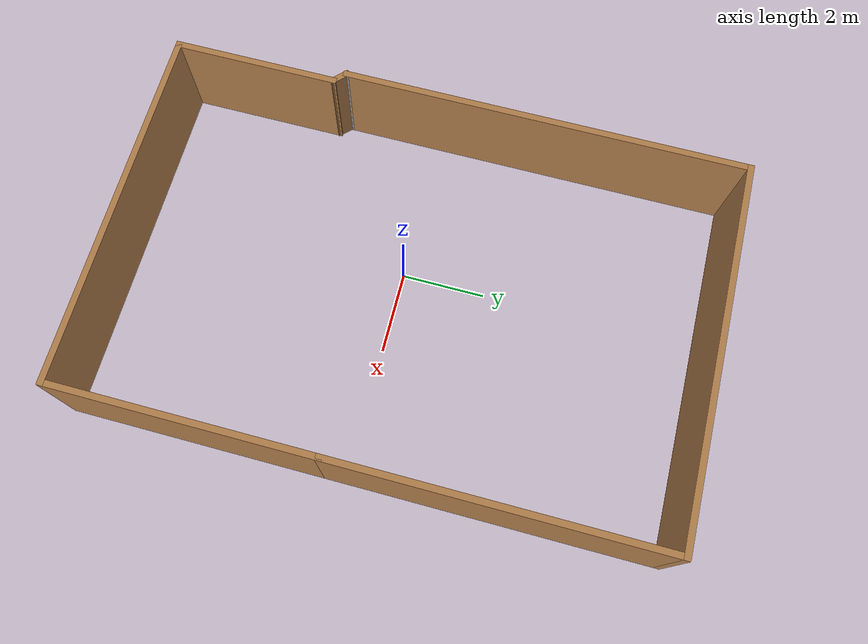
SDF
<?xml version='1.0'?>
<sdf version='1.7'>
  <model name='test2.world'>
    <pose>0.729467 0.36 0 0 -0 0</pose>
    <link name='Wall_0'>
      <collision name='Wall_0_Collision'>
        <geometry>
          <box>
            <size>4 0.15 2.5</size>
          </box>
        </geometry>
        <pose>0 0 1.25 0 -0 0</pose>
      </collision>
      <visual name='Wall_0_Visual'>
        <pose>0 0 1.25 0 -0 0</pose>
        <geometry>
          <box>
            <size>4 0.15 2.5</size>
          </box>
        </geometry>
        <material>
          <script>
            <uri>file://media/materials/scripts/gazebo.material</uri>
            <name>Gazebo/Wood</name>
          </script>
          <ambient>1 1 1 1</ambient>
        </material>
        <meta>
          <layer>0</layer>
        </meta>
      </visual>
      <pose>-4.15947 -4.925 0 0 -0 -1.5708</pose>
    </link>
    <link name='Wall_1'>
      <collision name='Wall_1_Collision'>
        <geometry>
          <box>
            <size>8.75 0.15 2.5</size>
          </box>
        </geometry>
        <pose>0 0 1.25 0 -0 0</pose>
      </collision>
      <visual name='Wall_1_Visual'>
        <pose>0 0 1.25 0 -0 0</pose>
        <geometry>
          <box>
            <size>8.75 0.15 2.5</size>
          </box>
        </geometry>
        <material>
          <script>
            <uri>file://media/materials/scripts/gazebo.material</uri>
            <name>Gazebo/Wood</name>
          </script>
          <ambient>1 1 1 1</ambient>
        </material>
        <meta>
          <layer>0</layer>
        </meta>
      </visual>
      <pose>0.140533 -6.85 0 0 -0 0</pose>
    </link>
    <link name='Wall_2'>
      <collision name='Wall_2_Collision'>
        <geometry>
          <box>
            <size>6.25 0.15 2.5</size>
          </box>
        </geometry>
        <pose>0 0 1.25 0 -0 0</pose>
      </collision>
      <visual name='Wall_2_Visual'>
        <pose>0 0 1.25 0 -0 0</pose>
        <geometry>
          <box>
            <size>6.25 0.15 2.5</size>
          </box>
        </geometry>
        <material>
          <script>
            <uri>file://media/materials/scripts/gazebo.material</uri>
            <name>Gazebo/Wood</name>
          </script>
          <ambient>1 1 1 1</ambient>
        </material>
        <meta>
          <layer>0</layer>
        </meta>
      </visual>
      <pose>4.44053 -3.8 0 0 -0 1.5708</pose>
    </link>
    <link name='Wall_3'>
      <collision name='Wall_3_Collision'>
        <geometry>
          <box>
            <size>7.75 0.15 2.5</size>
          </box>
        </geometry>
        <pose>0 0 1.25 0 -0 0</pose>
      </collision>
      <visual name='Wall_3_Visual'>
        <pose>0 0 1.25 0 -0 0</pose>
        <geometry>
          <box>
            <size>7.75 0.15 2.5</size>
          </box>
        </geometry>
        <material>
          <script>
            <uri>file://media/materials/scripts/gazebo.material</uri>
            <name>Gazebo/Wood</name>
          </script>
          <ambient>1 1 1 1</ambient>
        </material>
        <meta>
          <layer>0</layer>
        </meta>
      </visual>
      <pose>4.44053 3.05 0 0 -0 1.5708</pose>
    </link>
    <link name='Wall_4'>
      <collision name='Wall_4_Collision'>
        <geometry>
          <box>
            <size>9 0.15 2.5</size>
          </box>
        </geometry>
        <pose>0 0 1.25 0 -0 0</pose>
      </collision>
      <visual name='Wall_4_Visual'>
        <pose>0 0 1.25 0 -0 0</pose>
        <geometry>
          <box>
            <size>9 0.15 2.5</size>
          </box>
        </geometry>
        <material>
          <script>
            <uri>file://media/materials/scripts/gazebo.material</uri>
            <name>Gazebo/Wood</name>
          </script>
          <ambient>1 1 1 1</ambient>
        </material>
        <meta>
          <layer>0</layer>
        </meta>
      </visual>
      <pose>0.015533 6.85 0 0 -0 3.14159</pose>
    </link>
    <link name='Wall_5'>
      <collision name='Wall_5_Collision'>
        <geometry>
          <box>
            <size>9.75 0.15 2.5</size>
          </box>
        </geometry>
        <pose>0 0 1.25 0 -0 0</pose>
      </collision>
      <visual name='Wall_5_Visual'>
        <pose>0 0 1.25 0 -0 0</pose>
        <geometry>
          <box>
            <size>9.75 0.15 2.5</size>
          </box>
        </geometry>
        <material>
          <script>
            <uri>file://media/materials/scripts/gazebo.material</uri>
            <name>Gazebo/Wood</name>
          </script>
          <ambient>1 1 1 1</ambient>
        </material>
        <meta>
          <layer>0</layer>
        </meta>
      </visual>
      <pose>-4.40947 2.05 0 0 -0 -1.5708</pose>
    </link>
    <link name='Wall_6'>
      <collision name='Wall_6_Collision'>
        <geometry>
          <box>
            <size>0.15 0.15 2.5</size>
          </box>
        </geometry>
        <pose>0 0 1.25 0 -0 0</pose>
      </collision>
      <visual name='Wall_6_Visual'>
        <pose>0 0 1.25 0 -0 0</pose>
        <geometry>
          <box>
            <size>0.15 0.15 2.5</size>
          </box>
        </geometry>
        <material>
          <script>
            <uri>file://media/materials/scripts/gazebo.material</uri>
            <name>Gazebo/Grey</name>
          </script>
          <ambient>1 1 1 1</ambient>
        </material>
        <meta>
          <layer>0</layer>
        </meta>
      </visual>
      <pose>-4.40947 -2.75 0 0 -0 0</pose>
    </link>
    <link name='Wall_7'>
      <collision name='Wall_7_Collision'>
        <geometry>
          <box>
            <size>0.503553 0.15 2.5</size>
          </box>
        </geometry>
        <pose>0 0 1.25 0 -0 0</pose>
      </collision>
      <visual name='Wall_7_Visual'>
        <pose>0 0 1.25 0 -0 0</pose>
        <geometry>
          <box>
            <size>0.503553 0.15 2.5</size>
          </box>
        </geometry>
        <material>
          <script>
            <uri>file://media/materials/scripts/gazebo.material</uri>
            <name>Gazebo/Wood</name>
          </script>
          <ambient>1 1 1 1</ambient>
        </material>
        <meta>
          <layer>0</layer>
        </meta>
      </visual>
      <pose>-4.28447 -2.875 0 0 -0 -0.785398</pose>
    </link>
    <static>1</static>
  </model>
</sdf>
